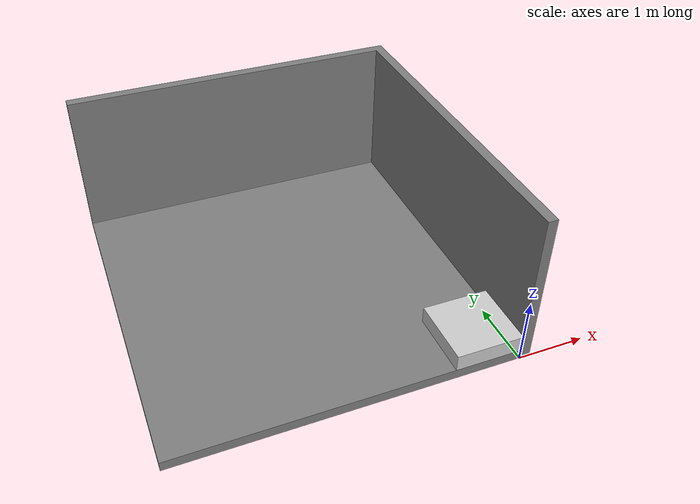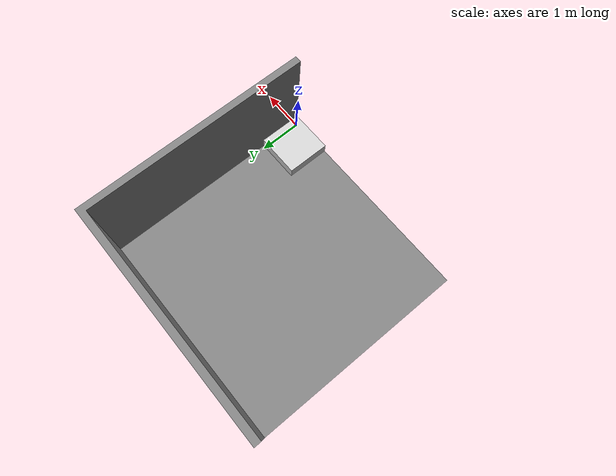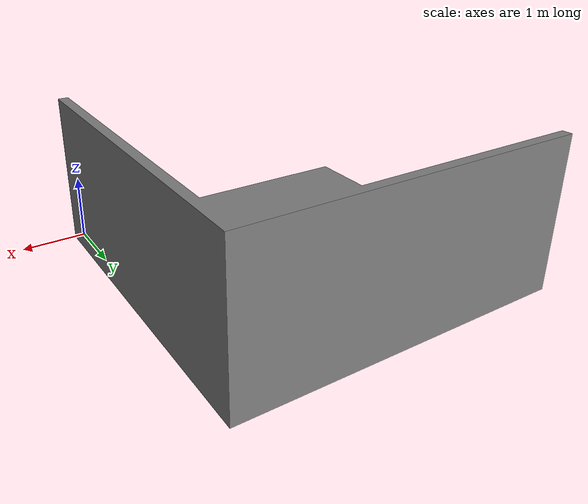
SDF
<?xml version="1.0" ?>
<sdf version="1.6">
  <world name="default">

    <!-- Configuração da Cena com sombras ativas -->
    <scene>
      <ambient>0.4 0.4 0.4 1</ambient>
      <background>0.7 0.7 0.7 1</background>
      <shadows>true</shadows>
    </scene>

    <!-- Iluminação Principal (Sol) -->
    <light type="directional" name="sun">
      <cast_shadows>true</cast_shadows>
      <pose>0 0 10 0 0 0</pose>
      <diffuse>0.8 0.8 0.8 1</diffuse>
      <specular>0.2 0.2 0.2 1</specular>
      <attenuation>
        <range>1000</range>
        <constant>0.9</constant>
        <linear>0.01</linear>
        <quadratic>0.001</quadratic>
      </attenuation>
      <direction>-0.5 0.1 -0.9</direction>
    </light>

    <include>
      <uri>model://open_map</uri>
    </include>
    <include>
      <uri>model://base</uri>
    </include>

  </world>
</sdf>

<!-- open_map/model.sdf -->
<sdf version="1.6">
  <model name="open_map">
    <static>true</static>
    <link name="link">
      <visual name="visual">
        <cast_shadows>true</cast_shadows>
        <geometry>
          <mesh>
            <uri>model://open_map/meshes/open_map.obj</uri>
          </mesh>
        </geometry>
        <material>
          <ambient>0.5 0.5 0.5 1</ambient>
          <diffuse>0.5 0.5 0.5 1</diffuse>
        </material>
      </visual>
      <collision name="collision">
        <geometry>
          <mesh>
            <uri>model://open_map/meshes/open_map_col.stl</uri>
          </mesh>
        </geometry>
      </collision>
    </link>
  </model>
</sdf>

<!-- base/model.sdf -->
<sdf version="1.6">
  <model name="base">
    <static>true</static>
    <link name="link">
      <visual name="visual">
        <cast_shadows>true</cast_shadows>
        <geometry>
          <mesh>
            <uri>model://base/meshes/base.obj</uri>
          </mesh>
        </geometry>
        <material>
          <ambient>0.8 0.8 0.8 1</ambient>
          <diffuse>0.8 0.8 0.8 1</diffuse>
        </material>
      </visual>
      <collision name="collision">
        <geometry>
          <mesh>
            <uri>model://base/meshes/base_col.stl</uri>
          </mesh>
        </geometry>
      </collision>
    </link>
  </model>
</sdf>
